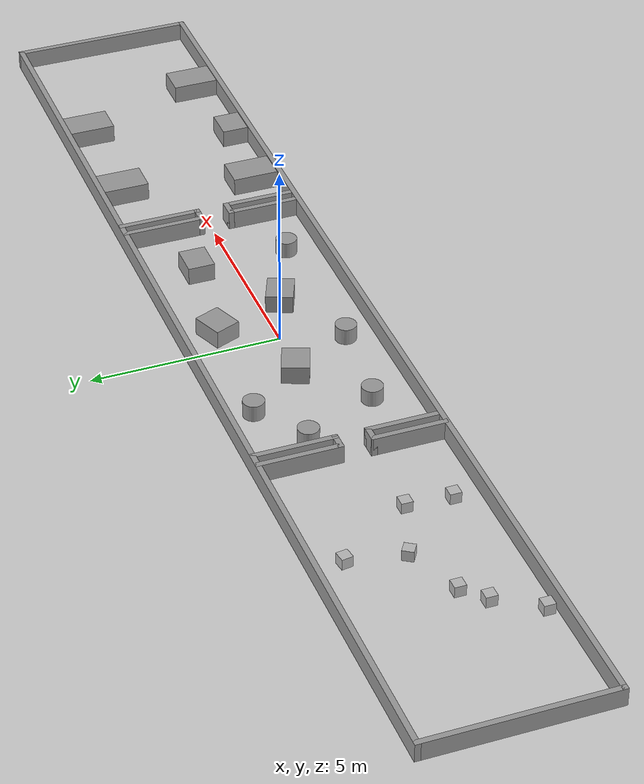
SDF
<sdf version="1.7">
 <world name="default">
  <light name="sun" type="directional">
   <pose>0 0 10 0 -0 0</pose>
   <diffuse>0.8 0.8 0.8 1</diffuse>
   <specular>0.2 0.2 0.2 1</specular>
   <attenuation>
    <range>1000</range>
    <constant>0.9</constant>
    <linear>0.01</linear>
    <quadratic>0.001</quadratic>
   </attenuation>
   <direction>-0.5 0.1 -0.9</direction>
   <spot><inner_angle>0</inner_angle><outer_angle>0</outer_angle><falloff>0</falloff></spot>
  </light>
  <model name="ground_plane">
   <static>1</static>
   <link name="link">
    <collision name="collision">
     <geometry><plane><normal>0 0 1</normal><size>100 100</size></plane></geometry>
     <surface><friction><ode><mu>100</mu><mu2>50</mu2></ode></friction></surface>
    </collision>
    <visual name="visual">
     <cast_shadows>0</cast_shadows>
     <geometry><plane><normal>0 0 1</normal><size>100 100</size></plane></geometry>
     <material>
      <script><uri>file://media/materials/scripts/gazebo.material</uri><name>Gazebo/Grey</name></script>
     </material>
    </visual>
   </link>
  </model>
  <gravity>0 0 -9.8</gravity>
  <magnetic_field>6e-06 2.3e-05 -4.2e-05</magnetic_field>
  <atmosphere type="adiabatic"/>
  <physics name="default_physics" default="0" type="ode">
   <max_step_size>0.001</max_step_size>
   <real_time_factor>1</real_time_factor>
   <real_time_update_rate>1000</real_time_update_rate>
  </physics>
  <scene><ambient>0.4 0.4 0.4 1</ambient><background>0.7 0.7 0.7 1</background><shadows>1</shadows></scene>
  <audio><device>default</device></audio>
  <spherical_coordinates>
   <surface_model>EARTH_WGS84</surface_model>
   <latitude_deg>0</latitude_deg>
   <longitude_deg>0</longitude_deg>
   <elevation>0</elevation>
   <heading_deg>0</heading_deg>
  </spherical_coordinates>
  <model name="exp_empty_rooms">
   <pose>-0.0311 0.006065 0 0 -0 0</pose>
   <link name="Wall_0">
    <collision name="Wall_0_Collision">
     <geometry><box><size>5 0.15 0.5</size></box></geometry>
     <pose>0 0 0.25 0 -0 0</pose>
    </collision>
    <visual name="Wall_0_Visual">
     <pose>0 0 0.25 0 -0 0</pose>
     <geometry><box><size>5 0.15 0.5</size></box></geometry>
     <material>
      <script><uri>file://media/materials/scripts/gazebo.material</uri><name>Gazebo/Grey</name></script>
      <ambient>1 1 1 1</ambient>
     </material>
     <meta><layer>0</layer></meta>
    </visual>
    <pose>-14.925 0 0 0 -0 -1.5708</pose>
   </link>
   <link name="Wall_1">
    <collision name="Wall_1_Collision">
     <geometry><box><size>30 0.15 0.5</size></box></geometry>
     <pose>0 0 0.25 0 -0 0</pose>
    </collision>
    <visual name="Wall_1_Visual">
     <pose>0 0 0.25 0 -0 0</pose>
     <geometry><box><size>30 0.15 0.5</size></box></geometry>
     <material>
      <script><uri>file://media/materials/scripts/gazebo.material</uri><name>Gazebo/Grey</name></script>
      <ambient>1 1 1 1</ambient>
     </material>
     <meta><layer>0</layer></meta>
    </visual>
    <pose>0 -2.425 0 0 -0 0</pose>
   </link>
   <link name="Wall_10">
    <collision name="Wall_10_Collision">
     <geometry><box><size>2.25 0.15 0.5</size></box></geometry>
     <pose>0 0 0.25 0 -0 0</pose>
    </collision>
    <visual name="Wall_10_Visual">
     <pose>0 0 0.25 0 -0 0</pose>
     <geometry><box><size>2.25 0.15 0.5</size></box></geometry>
     <material>
      <script><uri>file://media/materials/scripts/gazebo.material</uri><name>Gazebo/Grey</name></script>
      <ambient>1 1 1 1</ambient>
     </material>
     <meta><layer>0</layer></meta>
    </visual>
    <pose>-5.055 1.375 0 0 -0 -1.5708</pose>
   </link>
   <link name="Wall_11">
    <collision name="Wall_11_Collision">
     <geometry><box><size>0.5 0.15 0.5</size></box></geometry>
     <pose>0 0 0.25 0 -0 0</pose>
    </collision>
    <visual name="Wall_11_Visual">
     <pose>0 0 0.25 0 -0 0</pose>
     <geometry><box><size>0.5 0.15 0.5</size></box></geometry>
     <material>
      <script><uri>file://media/materials/scripts/gazebo.material</uri><name>Gazebo/Grey</name></script>
      <ambient>1 1 1 1</ambient>
     </material>
     <meta><layer>0</layer></meta>
    </visual>
    <pose>-4.88 0.325 0 0 -0 0</pose>
   </link>
   <link name="Wall_12">
    <collision name="Wall_12_Collision">
     <geometry><box><size>2.25 0.15 0.5</size></box></geometry>
     <pose>0 0 0.25 0 -0 0</pose>
    </collision>
    <visual name="Wall_12_Visual">
     <pose>0 0 0.25 0 -0 0</pose>
     <geometry><box><size>2.25 0.15 0.5</size></box></geometry>
     <material>
      <script><uri>file://media/materials/scripts/gazebo.material</uri><name>Gazebo/Grey</name></script>
      <ambient>1 1 1 1</ambient>
     </material>
     <meta><layer>0</layer></meta>
    </visual>
    <pose>-4.705 1.375 0 0 -0 1.5708</pose>
   </link>
   <link name="Wall_16">
    <collision name="Wall_16_Collision">
     <geometry><box><size>0.5 0.15 0.5</size></box></geometry>
     <pose>0 0 0.25 0 -0 0</pose>
    </collision>
    <visual name="Wall_16_Visual">
     <pose>0 0 0.25 0 -0 0</pose>
     <geometry><box><size>0.5 0.15 0.5</size></box></geometry>
     <material>
      <script><uri>file://media/materials/scripts/gazebo.material</uri><name>Gazebo/Grey</name></script>
      <ambient>1 1 1 1</ambient>
     </material>
     <meta><layer>0</layer></meta>
    </visual>
    <pose>-4.88 -0.525 0 0 -0 0</pose>
   </link>
   <link name="Wall_17">
    <collision name="Wall_17_Collision">
     <geometry><box><size>2 0.15 0.5</size></box></geometry>
     <pose>0 0 0.25 0 -0 0</pose>
    </collision>
    <visual name="Wall_17_Visual">
     <pose>0 0 0.25 0 -0 0</pose>
     <geometry><box><size>2 0.15 0.5</size></box></geometry>
     <material>
      <script><uri>file://media/materials/scripts/gazebo.material</uri><name>Gazebo/Grey</name></script>
      <ambient>1 1 1 1</ambient>
     </material>
     <meta><layer>0</layer></meta>
    </visual>
    <pose>-4.705 -1.45 0 0 -0 -1.5708</pose>
   </link>
   <link name="Wall_19">
    <collision name="Wall_19_Collision">
     <geometry><box><size>2 0.15 0.5</size></box></geometry>
     <pose>0 0 0.25 0 -0 0</pose>
    </collision>
    <visual name="Wall_19_Visual">
     <pose>0 0 0.25 0 -0 0</pose>
     <geometry><box><size>2 0.15 0.5</size></box></geometry>
     <material>
      <script><uri>file://media/materials/scripts/gazebo.material</uri><name>Gazebo/Grey</name></script>
      <ambient>1 1 1 1</ambient>
     </material>
     <meta><layer>0</layer></meta>
    </visual>
    <pose>-5.055 -1.45 0 0 -0 -1.5708</pose>
   </link>
   <link name="Wall_2">
    <collision name="Wall_2_Collision">
     <geometry><box><size>5 0.15 0.5</size></box></geometry>
     <pose>0 0 0.25 0 -0 0</pose>
    </collision>
    <visual name="Wall_2_Visual">
     <pose>0 0 0.25 0 -0 0</pose>
     <geometry><box><size>5 0.15 0.5</size></box></geometry>
     <material>
      <script><uri>file://media/materials/scripts/gazebo.material</uri><name>Gazebo/Grey</name></script>
      <ambient>1 1 1 1</ambient>
     </material>
     <meta><layer>0</layer></meta>
    </visual>
    <pose>14.925 0 0 0 -0 1.5708</pose>
   </link>
   <link name="Wall_3">
    <collision name="Wall_3_Collision">
     <geometry><box><size>30 0.15 0.5</size></box></geometry>
     <pose>0 0 0.25 0 -0 0</pose>
    </collision>
    <visual name="Wall_3_Visual">
     <pose>0 0 0.25 0 -0 0</pose>
     <geometry><box><size>30 0.15 0.5</size></box></geometry>
     <material>
      <script><uri>file://media/materials/scripts/gazebo.material</uri><name>Gazebo/Grey</name></script>
      <ambient>1 1 1 1</ambient>
     </material>
     <meta><layer>0</layer></meta>
    </visual>
    <pose>0 2.425 0 0 -0 3.14159</pose>
   </link>
   <link name="Wall_38">
    <collision name="Wall_38_Collision">
     <geometry><box><size>2 0.15 0.5</size></box></geometry>
     <pose>0 0 0.25 0 -0 0</pose>
    </collision>
    <visual name="Wall_38_Visual">
     <pose>0 0 0.25 0 -0 0</pose>
     <geometry><box><size>2 0.15 0.5</size></box></geometry>
     <material>
      <script><uri>file://media/materials/scripts/gazebo.material</uri><name>Gazebo/Grey</name></script>
      <ambient>1 1 1 1</ambient>
     </material>
     <meta><layer>0</layer></meta>
    </visual>
    <pose>5.185 -1.44 0 0 -0 -1.5708</pose>
   </link>
   <link name="Wall_43">
    <collision name="Wall_43_Collision">
     <geometry><box><size>0.5 0.15 0.5</size></box></geometry>
     <pose>0 0 0.25 0 -0 0</pose>
    </collision>
    <visual name="Wall_43_Visual">
     <pose>0 0 0.25 0 -0 0</pose>
     <geometry><box><size>0.5 0.15 0.5</size></box></geometry>
     <material>
      <script><uri>file://media/materials/scripts/gazebo.material</uri><name>Gazebo/Grey</name></script>
      <ambient>1 1 1 1</ambient>
     </material>
     <meta><layer>0</layer></meta>
    </visual>
    <pose>5.36 -0.515 0 0 -0 0</pose>
   </link>
   <link name="Wall_44">
    <collision name="Wall_44_Collision">
     <geometry><box><size>2 0.15 0.5</size></box></geometry>
     <pose>0 0 0.25 0 -0 0</pose>
    </collision>
    <visual name="Wall_44_Visual">
     <pose>0 0 0.25 0 -0 0</pose>
     <geometry><box><size>2 0.15 0.5</size></box></geometry>
     <material>
      <script><uri>file://media/materials/scripts/gazebo.material</uri><name>Gazebo/Grey</name></script>
      <ambient>1 1 1 1</ambient>
     </material>
     <meta><layer>0</layer></meta>
    </visual>
    <pose>5.535 -1.44 0 0 -0 -1.5708</pose>
   </link>
   <link name="Wall_47">
    <collision name="Wall_47_Collision">
     <geometry><box><size>2.25 0.15 0.5</size></box></geometry>
     <pose>0 0 0.25 0 -0 0</pose>
    </collision>
    <visual name="Wall_47_Visual">
     <pose>0 0 0.25 0 -0 0</pose>
     <geometry><box><size>2.25 0.15 0.5</size></box></geometry>
     <material>
      <script><uri>file://media/materials/scripts/gazebo.material</uri><name>Gazebo/Grey</name></script>
      <ambient>1 1 1 1</ambient>
     </material>
     <meta><layer>0</layer></meta>
    </visual>
    <pose>5.175 1.365 0 0 -0 1.5708</pose>
   </link>
   <link name="Wall_49">
    <collision name="Wall_49_Collision">
     <geometry><box><size>0.5 0.15 0.5</size></box></geometry>
     <pose>0 0 0.25 0 -0 0</pose>
    </collision>
    <visual name="Wall_49_Visual">
     <pose>0 0 0.25 0 -0 0</pose>
     <geometry><box><size>0.5 0.15 0.5</size></box></geometry>
     <material>
      <script><uri>file://media/materials/scripts/gazebo.material</uri><name>Gazebo/Grey</name></script>
      <ambient>1 1 1 1</ambient>
     </material>
     <meta><layer>0</layer></meta>
    </visual>
    <pose>5.35 0.315 0 0 -0 0</pose>
   </link>
   <link name="Wall_51">
    <collision name="Wall_51_Collision">
     <geometry><box><size>2.25 0.15 0.5</size></box></geometry>
     <pose>0 0 0.25 0 -0 0</pose>
    </collision>
    <visual name="Wall_51_Visual">
     <pose>0 0 0.25 0 -0 0</pose>
     <geometry><box><size>2.25 0.15 0.5</size></box></geometry>
     <material>
      <script><uri>file://media/materials/scripts/gazebo.material</uri><name>Gazebo/Grey</name></script>
      <ambient>1 1 1 1</ambient>
     </material>
     <meta><layer>0</layer></meta>
    </visual>
    <pose>5.525 1.365 0 0 -0 1.5708</pose>
   </link>
   <static>1</static>
  </model>
  <model name="unit_box_clone">
   <pose>-1.46679 0.124105 0.243065 0 0 -0.368363</pose>
   <link name="link">
    <inertial>
     <mass>1</mass>
     <inertia>
      <ixx>0.166667</ixx>
      <ixy>0</ixy>
      <ixz>0</ixz>
      <iyy>0.166667</iyy>
      <iyz>0</iyz>
      <izz>0.166667</izz>
     </inertia>
    </inertial>
    <collision name="collision">
     <geometry><box><size>0.832545 0.712184 0.486131</size></box></geometry>
    </collision>
    <visual name="visual">
     <geometry><box><size>0.832545 0.712184 0.486131</size></box></geometry>
     <material>
      <script><name>Gazebo/Grey</name><uri>file://media/materials/scripts/gazebo.material</uri></script>
     </material>
    </visual>
   </link>
  </model>
  <model name="unit_box_clone_clone">
   <pose>0.704279 1.42665 0.243065 0 -0 0.381073</pose>
   <link name="link">
    <inertial>
     <mass>1</mass>
     <inertia>
      <ixx>0.166667</ixx>
      <ixy>0</ixy>
      <ixz>0</ixz>
      <iyy>0.166667</iyy>
      <iyz>0</iyz>
      <izz>0.166667</izz>
     </inertia>
    </inertial>
    <collision name="collision">
     <geometry><box><size>0.832545 0.712184 0.486131</size></box></geometry>
    </collision>
    <visual name="visual">
     <geometry><box><size>0.832545 0.712184 0.486131</size></box></geometry>
     <material>
      <script><name>Gazebo/Grey</name><uri>file://media/materials/scripts/gazebo.material</uri></script>
     </material>
    </visual>
   </link>
  </model>
  <model name="unit_box_clone_clone_1">
   <pose>1.46396 -0.547771 0.243065 0 0 -0.410182</pose>
   <link name="link">
    <inertial>
     <mass>1</mass>
     <inertia>
      <ixx>0.166667</ixx>
      <ixy>0</ixy>
      <ixz>0</ixz>
      <iyy>0.166667</iyy>
      <iyz>0</iyz>
      <izz>0.166667</izz>
     </inertia>
    </inertial>
    <collision name="collision">
     <geometry><box><size>0.832545 0.712184 0.486131</size></box></geometry>
    </collision>
    <visual name="visual">
     <geometry><box><size>0.832545 0.712184 0.486131</size></box></geometry>
     <material>
      <script><name>Gazebo/Grey</name><uri>file://media/materials/scripts/gazebo.material</uri></script>
     </material>
    </visual>
   </link>
  </model>
  <model name="unit_box_clone_clone_2">
   <pose>3.45364 1.03602 0.243065 0 -0 0</pose>
   <link name="link">
    <inertial>
     <mass>1</mass>
     <inertia>
      <ixx>0.166667</ixx>
      <ixy>0</ixy>
      <ixz>0</ixz>
      <iyy>0.166667</iyy>
      <iyz>0</iyz>
      <izz>0.166667</izz>
     </inertia>
    </inertial>
    <collision name="collision">
     <geometry><box><size>0.832545 0.712184 0.486131</size></box></geometry>
    </collision>
    <visual name="visual">
     <geometry><box><size>0.832545 0.712184 0.486131</size></box></geometry>
     <material>
      <script><name>Gazebo/Grey</name><uri>file://media/materials/scripts/gazebo.material</uri></script>
     </material>
    </visual>
   </link>
  </model>
  <model name="unit_box_clone_clone_2_clone">
   <pose>9.34147 -1.9802 0.243065 0 0 -3e-06</pose>
   <link name="link">
    <inertial>
     <mass>1</mass>
     <inertia>
      <ixx>0.166667</ixx>
      <ixy>0</ixy>
      <ixz>0</ixz>
      <iyy>0.166667</iyy>
      <iyz>0</iyz>
      <izz>0.166667</izz>
     </inertia>
    </inertial>
    <collision name="collision"><geometry><box><size>0.832545 0.71218 0.486131</size></box></geometry></collision>
    <visual name="visual">
     <geometry><box><size>0.832545 0.71218 0.486131</size></box></geometry>
     <material>
      <script><name>Gazebo/Grey</name><uri>file://media/materials/scripts/gazebo.material</uri></script>
     </material>
    </visual>
   </link>
  </model>
  <model name="unit_box_clone_clone_2_clone_clone">
   <pose>6.96963 -1.72255 0.243065 0 0 -3e-06</pose>
   <link name="link">
    <inertial>
     <mass>1</mass>
     <inertia>
      <ixx>0.166667</ixx>
      <ixy>0</ixy>
      <ixz>0</ixz>
      <iyy>0.166667</iyy>
      <iyz>0</iyz>
      <izz>0.166667</izz>
     </inertia>
    </inertial>
    <collision name="collision"><geometry><box><size>0.832545 1.22961 0.486131</size></box></geometry></collision>
    <visual name="visual">
     <geometry><box><size>0.832545 1.22961 0.486131</size></box></geometry>
     <material>
      <script><name>Gazebo/Grey</name><uri>file://media/materials/scripts/gazebo.material</uri></script>
     </material>
    </visual>
   </link>
  </model>
  <model name="unit_box_clone_clone_2_clone_clone_clone">
   <pose>10.6858 1.74123 0.243065 0 0 -3e-06</pose>
   <link name="link">
    <inertial>
     <mass>1</mass>
     <inertia>
      <ixx>0.166667</ixx>
      <ixy>0</ixy>
      <ixz>0</ixz>
      <iyy>0.166667</iyy>
      <iyz>0</iyz>
      <izz>0.166667</izz>
     </inertia>
    </inertial>
    <collision name="collision"><geometry><box><size>0.832545 1.22961 0.486131</size></box></geometry></collision>
    <visual name="visual">
     <geometry><box><size>0.832545 1.22961 0.486131</size></box></geometry>
     <material>
      <script><name>Gazebo/Grey</name><uri>file://media/materials/scripts/gazebo.material</uri></script>
     </material>
    </visual>
   </link>
  </model>
  <model name="unit_box_clone_clone_2_clone_clone_clone_0">
   <pose>11.9853 -1.72376 0.243065 0 0 -3e-06</pose>
   <link name="link">
    <inertial>
     <mass>1</mass>
     <inertia>
      <ixx>0.166667</ixx>
      <ixy>0</ixy>
      <ixz>0</ixz>
      <iyy>0.166667</iyy>
      <iyz>0</iyz>
      <izz>0.166667</izz>
     </inertia>
    </inertial>
    <collision name="collision"><geometry><box><size>0.832545 1.22961 0.486131</size></box></geometry></collision>
    <visual name="visual">
     <geometry><box><size>0.832545 1.22961 0.486131</size></box></geometry>
     <material>
      <script><name>Gazebo/Grey</name><uri>file://media/materials/scripts/gazebo.material</uri></script>
     </material>
    </visual>
   </link>
  </model>
  <model name="unit_box_clone_clone_2_clone_clone_clone_1">
   <pose>7.60902 1.74123 0.243065 0 0 -3e-06</pose>
   <link name="link">
    <inertial>
     <mass>1</mass>
     <inertia>
      <ixx>0.166667</ixx>
      <ixy>0</ixy>
      <ixz>0</ixz>
      <iyy>0.166667</iyy>
      <iyz>0</iyz>
      <izz>0.166667</izz>
     </inertia>
    </inertial>
    <collision name="collision"><geometry><box><size>0.832545 1.22961 0.486131</size></box></geometry></collision>
    <visual name="visual">
     <geometry><box><size>0.832545 1.22961 0.486131</size></box></geometry>
     <material>
      <script><name>Gazebo/Grey</name><uri>file://media/materials/scripts/gazebo.material</uri></script>
     </material>
    </visual>
   </link>
  </model>
  <model name="unit_cylinder">
   <pose>-2.66443 1.66278 0.22289 2e-06 2e-06 0</pose>
   <link name="link">
    <inertial>
     <mass>1</mass>
     <inertia><ixx>0.145833</ixx><ixy>0</ixy><ixz>0</ixz><iyy>0.145833</iyy><iyz>0</iyz><izz>0.125</izz></inertia>
    </inertial>
    <collision name="collision">
     <geometry><cylinder><radius>0.278354</radius><length>0.445785</length></cylinder></geometry>
    </collision>
    <visual name="visual">
     <geometry><cylinder><radius>0.278354</radius><length>0.445785</length></cylinder></geometry>
     <material>
      <script><name>Gazebo/Grey</name><uri>file://media/materials/scripts/gazebo.material</uri></script>
     </material>
    </visual>
   </link>
  </model>
  <model name="unit_cylinder_clone">
   <pose>-3.11174 -1.27262 0.222892 0 -0 0</pose>
   <link name="link">
    <inertial>
     <mass>1</mass>
     <inertia><ixx>0.145833</ixx><ixy>0</ixy><ixz>0</ixz><iyy>0.145833</iyy><iyz>0</iyz><izz>0.125</izz></inertia>
    </inertial>
    <collision name="collision">
     <geometry><cylinder><radius>0.278354</radius><length>0.445785</length></cylinder></geometry>
    </collision>
    <visual name="visual">
     <geometry><cylinder><radius>0.278354</radius><length>0.445785</length></cylinder></geometry>
     <material>
      <script><name>Gazebo/Grey</name><uri>file://media/materials/scripts/gazebo.material</uri></script>
     </material>
    </visual>
   </link>
  </model>
  <model name="unit_cylinder_clone_0">
   <pose>3.55449 -1.48911 0.222885 -2e-06 -2e-06 0</pose>
   <link name="link">
    <inertial>
     <mass>1</mass>
     <inertia><ixx>0.145833</ixx><ixy>0</ixy><ixz>0</ixz><iyy>0.145833</iyy><iyz>0</iyz><izz>0.125</izz></inertia>
    </inertial>
    <collision name="collision">
     <geometry><cylinder><radius>0.278354</radius><length>0.445785</length></cylinder></geometry>
    </collision>
    <visual name="visual">
     <geometry><cylinder><radius>0.278354</radius><length>0.445785</length></cylinder></geometry>
     <material>
      <script><name>Gazebo/Grey</name><uri>file://media/materials/scripts/gazebo.material</uri></script>
     </material>
    </visual>
   </link>
  </model>
  <model name="unit_cylinder_clone_0_clone">
   <pose>-0.526371 -1.58176 0.222885 -2e-06 -2e-06 0</pose>
   <link name="link">
    <inertial>
     <mass>1</mass>
     <inertia><ixx>0.145833</ixx><ixy>0</ixy><ixz>0</ixz><iyy>0.145833</iyy><iyz>0</iyz><izz>0.125</izz></inertia>
    </inertial>
    <collision name="collision">
     <geometry><cylinder><radius>0.278354</radius><length>0.445785</length></cylinder></geometry>
    </collision>
    <visual name="visual">
     <geometry><cylinder><radius>0.278354</radius><length>0.445785</length></cylinder></geometry>
     <material>
      <script><name>Gazebo/Grey</name><uri>file://media/materials/scripts/gazebo.material</uri></script>
     </material>
    </visual>
   </link>
  </model>
  <model name="unit_cylinder_clone_1">
   <pose>-4.12027 0.785227 0.222885 -2e-06 -2e-06 0</pose>
   <link name="link">
    <inertial>
     <mass>1</mass>
     <inertia><ixx>0.145833</ixx><ixy>0</ixy><ixz>0</ixz><iyy>0.145833</iyy><iyz>0</iyz><izz>0.125</izz></inertia>
    </inertial>
    <collision name="collision">
     <geometry><cylinder><radius>0.278354</radius><length>0.445785</length></cylinder></geometry>
    </collision>
    <visual name="visual">
     <geometry><cylinder><radius>0.278354</radius><length>0.445785</length></cylinder></geometry>
     <material>
      <script><name>Gazebo/Grey</name><uri>file://media/materials/scripts/gazebo.material</uri></script>
     </material>
    </visual>
   </link>
  </model>
  <model name="DynamicObstacle">
   <pose>-8.60717 1.59363 0.15 0 -0 0.144742</pose>
   <link name="link">
    <inertial>
     <inertia><ixx>0.17</ixx><ixy>0</ixy><ixz>0</ixz><iyy>0.17</iyy><iyz>0</iyz><izz>0.17</izz></inertia>
     <mass>100</mass>
    </inertial>
    <collision name="collision">
     <max_contacts>0</max_contacts>
     <geometry><box><size>0.3 0.3 0.3</size></box></geometry>
     <surface>
      <friction><ode><mu>0</mu><mu2>0</mu2></ode></friction>
      <bounce><restitution_coefficient>0</restitution_coefficient><threshold>0</threshold></bounce>
      <contact><ode><kp>2e+09</kp><kd>1</kd><max_vel>0.01</max_vel><min_depth>0</min_depth></ode></contact>
     </surface>
    </collision>
    <visual name="visual"><geometry><box><size>0.3 0.3 0.3</size></box></geometry></visual>
   </link>
   <plugin name="random" filename="libRandomVelocityPlugin.so">
    <link>link</link>
    <initial_velocity>0.5 0.0 0</initial_velocity>
    <velocity_factor>0.2</velocity_factor>
    <update_period>5</update_period>
    <min_z>-5</min_z>
    <max_z>0</max_z>
   </plugin>
  </model>
  <model name="DynamicObstacle_clone">
   <pose>-8.88223 0.11175 0.15 0 -0 0.99634</pose>
   <link name="link">
    <inertial>
     <inertia><ixx>0.17</ixx><ixy>0</ixy><ixz>0</ixz><iyy>0.17</iyy><iyz>0</iyz><izz>0.17</izz></inertia>
     <mass>100</mass>
    </inertial>
    <collision name="collision">
     <max_contacts>0</max_contacts>
     <geometry><box><size>0.3 0.3 0.3</size></box></geometry>
     <surface>
      <friction><ode><mu>0</mu><mu2>0</mu2></ode></friction>
      <bounce><restitution_coefficient>0</restitution_coefficient><threshold>0</threshold></bounce>
      <contact><ode><kp>2e+09</kp><kd>1</kd><max_vel>0.01</max_vel><min_depth>0</min_depth></ode></contact>
     </surface>
    </collision>
    <visual name="visual"><geometry><box><size>0.3 0.3 0.3</size></box></geometry></visual>
   </link>
   <plugin name="random" filename="libRandomVelocityPlugin.so">
    <link>link</link>
    <initial_velocity>0.5 0.0 0</initial_velocity>
    <velocity_factor>0.2</velocity_factor>
    <update_period>5</update_period>
    <min_z>-5</min_z>
    <max_z>0</max_z>
   </plugin>
  </model>
  <model name="DynamicObstacle_clone_clone">
   <pose>-11.6527 -2.11187 0.15 0 -0 0</pose>
   <link name="link">
    <inertial>
     <inertia><ixx>0.17</ixx><ixy>0</ixy><ixz>0</ixz><iyy>0.17</iyy><iyz>0</iyz><izz>0.17</izz></inertia>
     <mass>100</mass>
    </inertial>
    <collision name="collision">
     <max_contacts>0</max_contacts>
     <geometry><box><size>0.3 0.3 0.3</size></box></geometry>
     <surface>
      <friction><ode><mu>0</mu><mu2>0</mu2></ode></friction>
      <bounce><restitution_coefficient>0</restitution_coefficient><threshold>0</threshold></bounce>
      <contact><ode><kp>2e+09</kp><kd>1</kd><max_vel>0.01</max_vel><min_depth>0</min_depth></ode></contact>
     </surface>
    </collision>
    <visual name="visual"><geometry><box><size>0.3 0.3 0.3</size></box></geometry></visual>
   </link>
   <plugin name="random" filename="libRandomVelocityPlugin.so">
    <link>link</link>
    <initial_velocity>0.5 0.0 0</initial_velocity>
    <velocity_factor>0.2</velocity_factor>
    <update_period>5</update_period>
    <min_z>-5</min_z>
    <max_z>0</max_z>
   </plugin>
  </model>
  <model name="DynamicObstacle_clone_clone_clone">
   <pose>-10.3856 -0.470482 0.149998 0 -0 0</pose>
   <link name="link">
    <inertial>
     <inertia><ixx>0.17</ixx><ixy>0</ixy><ixz>0</ixz><iyy>0.17</iyy><iyz>0</iyz><izz>0.17</izz></inertia>
     <mass>100</mass>
    </inertial>
    <collision name="collision">
     <max_contacts>0</max_contacts>
     <geometry><box><size>0.3 0.3 0.3</size></box></geometry>
     <surface>
      <friction><ode><mu>0</mu><mu2>0</mu2></ode></friction>
      <bounce><restitution_coefficient>0</restitution_coefficient><threshold>0</threshold></bounce>
      <contact><ode><kp>2e+09</kp><kd>1</kd><max_vel>0.01</max_vel><min_depth>0</min_depth></ode></contact>
     </surface>
    </collision>
    <visual name="visual"><geometry><box><size>0.3 0.3 0.3</size></box></geometry></visual>
   </link>
   <plugin name="random" filename="libRandomVelocityPlugin.so">
    <link>link</link>
    <initial_velocity>0.5 0.0 0</initial_velocity>
    <velocity_factor>0.2</velocity_factor>
    <update_period>5</update_period>
    <min_z>-5</min_z>
    <max_z>0</max_z>
   </plugin>
  </model>
  <model name="DynamicObstacle_clone_clone_clone_clone">
   <pose>-7.25413 -0.452851 0.149999 0 -0 0</pose>
   <link name="link">
    <inertial>
     <inertia><ixx>0.17</ixx><ixy>0</ixy><ixz>0</ixz><iyy>0.17</iyy><iyz>0</iyz><izz>0.17</izz></inertia>
     <mass>100</mass>
    </inertial>
    <collision name="collision">
     <max_contacts>0</max_contacts>
     <geometry><box><size>0.3 0.3 0.3</size></box></geometry>
     <surface>
      <friction><ode><mu>0</mu><mu2>0</mu2></ode></friction>
      <bounce><restitution_coefficient>0</restitution_coefficient><threshold>0</threshold></bounce>
      <contact><ode><kp>2e+09</kp><kd>1</kd><max_vel>0.01</max_vel><min_depth>0</min_depth></ode></contact>
     </surface>
    </collision>
    <visual name="visual"><geometry><box><size>0.3 0.3 0.3</size></box></geometry></visual>
   </link>
   <plugin name="random" filename="libRandomVelocityPlugin.so">
    <link>link</link>
    <initial_velocity>0.5 0.0 0</initial_velocity>
    <velocity_factor>0.2</velocity_factor>
    <update_period>5</update_period>
    <min_z>-5</min_z>
    <max_z>0</max_z>
   </plugin>
  </model>
  <model name="DynamicObstacle_clone_clone_clone_clone_clone">
   <pose>-10.9469 -1.00049 0.15 0 -0 0</pose>
   <link name="link">
    <inertial>
     <inertia><ixx>0.17</ixx><ixy>0</ixy><ixz>0</ixz><iyy>0.17</iyy><iyz>0</iyz><izz>0.17</izz></inertia>
     <mass>100</mass>
    </inertial>
    <collision name="collision">
     <max_contacts>0</max_contacts>
     <geometry><box><size>0.3 0.3 0.3</size></box></geometry>
     <surface>
      <friction><ode><mu>0</mu><mu2>0</mu2></ode></friction>
      <bounce><restitution_coefficient>0</restitution_coefficient><threshold>0</threshold></bounce>
      <contact><ode><kp>2e+09</kp><kd>1</kd><max_vel>0.01</max_vel><min_depth>0</min_depth></ode></contact>
     </surface>
    </collision>
    <visual name="visual"><geometry><box><size>0.3 0.3 0.3</size></box></geometry></visual>
   </link>
   <plugin name="random" filename="libRandomVelocityPlugin.so">
    <link>link</link>
    <initial_velocity>0.5 0.0 0</initial_velocity>
    <velocity_factor>0.2</velocity_factor>
    <update_period>5</update_period>
    <min_z>-5</min_z>
    <max_z>0</max_z>
   </plugin>
  </model>
  <model name="DynamicObstacle_clone_clone_clone_clone_clone_clone">
   <pose>-7.33613 -1.65414 0.149998 0 -0 0</pose>
   <link name="link">
    <inertial>
     <inertia><ixx>0.17</ixx><ixy>0</ixy><ixz>0</ixz><iyy>0.17</iyy><iyz>0</iyz><izz>0.17</izz></inertia>
     <mass>100</mass>
    </inertial>
    <collision name="collision">
     <max_contacts>0</max_contacts>
     <geometry><box><size>0.3 0.3 0.3</size></box></geometry>
     <surface>
      <friction><ode><mu>0</mu><mu2>0</mu2></ode></friction>
      <bounce><restitution_coefficient>0</restitution_coefficient><threshold>0</threshold></bounce>
      <contact><ode><kp>2e+09</kp><kd>1</kd><max_vel>0.01</max_vel><min_depth>0</min_depth></ode></contact>
     </surface>
    </collision>
    <visual name="visual"><geometry><box><size>0.3 0.3 0.3</size></box></geometry></visual>
   </link>
   <plugin name="random" filename="libRandomVelocityPlugin.so">
    <link>link</link>
    <initial_velocity>0.5 0.0 0</initial_velocity>
    <velocity_factor>0.2</velocity_factor>
    <update_period>5</update_period>
    <min_z>-5</min_z>
    <max_z>0</max_z>
   </plugin>
  </model>
 </world>
</sdf>
